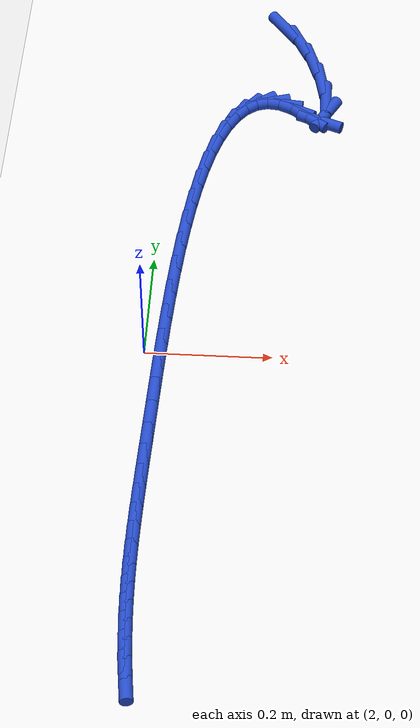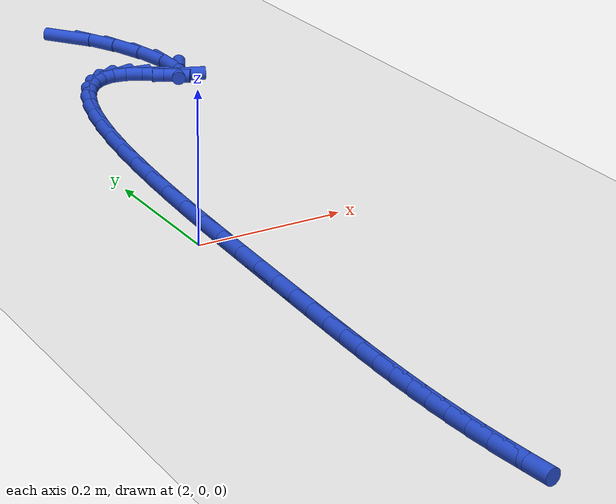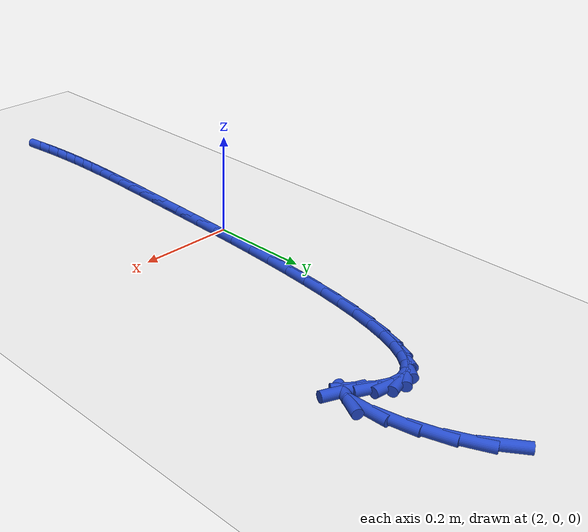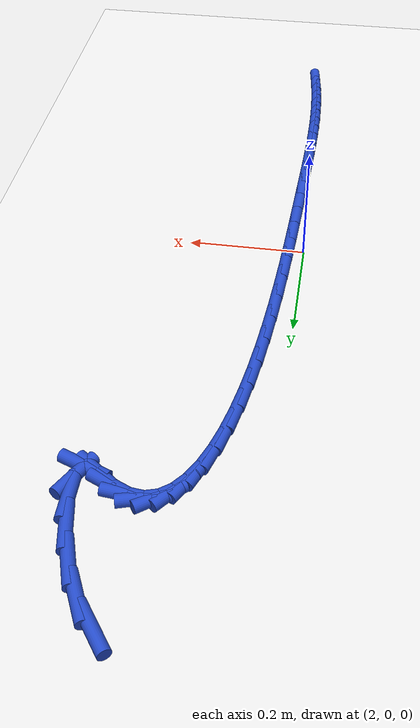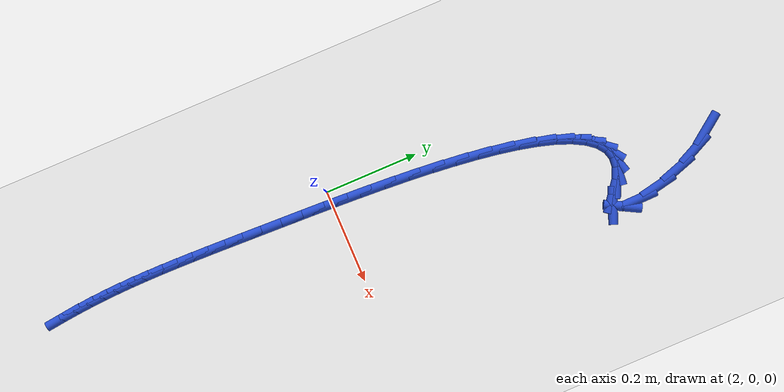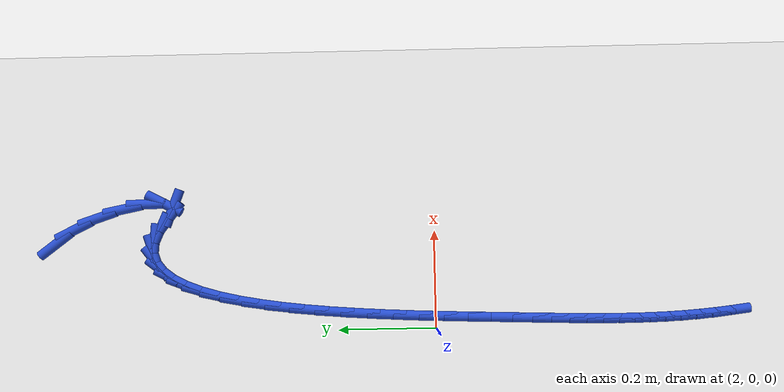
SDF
<sdf version="1.6">
 <world name="default">
  <model name="ground_plane">
   <static>1</static>
   <link name="link">
    <collision name="collision">
     <geometry><plane><normal>0 0 1</normal><size>100 100</size></plane></geometry>
     <surface><friction><ode><mu>100</mu><mu2>50</mu2></ode></friction></surface>
    </collision>
    <visual name="visual">
     <cast_shadows>0</cast_shadows>
     <geometry><plane><normal>0 0 1</normal><size>100 100</size></plane></geometry>
     <material>
      <script><uri>file://media/materials/scripts/gazebo.material</uri><name>Gazebo/WhiteGlow</name></script>
     </material>
    </visual>
   </link>
  </model>
  <model name="line">
   <link name="link_99">
    <pose>2.1888042719367853 0.7743270735114104 0.01 0 1.57 -0.9363026649190562</pose>
    <collision name="collision">
     <geometry><cylinder><radius>0.01</radius><length>0.08</length></cylinder></geometry>
    </collision>
    <visual name="visual">
     <material>
      <script><name>Gazebo/Blue</name><uri>file://media/materials/scripts/gazebo.material</uri></script>
     </material>
     <geometry><cylinder><radius>0.01</radius><length>0.08</length></cylinder></geometry>
    </visual>
   </link>
   <link name="link_100">
    <pose>2.2171648789369764 0.7357946834804234 0.01 0 1.57 -1.1264641274387024</pose>
    <collision name="collision">
     <geometry><cylinder><radius>0.01</radius><length>0.08</length></cylinder></geometry>
    </collision>
    <visual name="visual">
     <material>
      <script><name>Gazebo/Blue</name><uri>file://media/materials/scripts/gazebo.material</uri></script>
     </material>
     <geometry><cylinder><radius>0.01</radius><length>0.08</length></cylinder></geometry>
    </visual>
   </link>
   <link name="link_101">
    <pose>2.240402559902176 0.6869846128494241 0.01 0 1.57 -1.255866447374387</pose>
    <collision name="collision">
     <geometry><cylinder><radius>0.01</radius><length>0.08</length></cylinder></geometry>
    </collision>
    <visual name="visual">
     <material>
      <script><name>Gazebo/Blue</name><uri>file://media/materials/scripts/gazebo.material</uri></script>
     </material>
     <geometry><cylinder><radius>0.01</radius><length>0.08</length></cylinder></geometry>
    </visual>
   </link>
   <link name="link_102">
    <pose>2.2572978128848513 0.6351223925845828 0.01 0 1.57 -1.3775150531442284</pose>
    <collision name="collision">
     <geometry><cylinder><radius>0.01</radius><length>0.08</length></cylinder></geometry>
    </collision>
    <visual name="visual">
     <material>
      <script><name>Gazebo/Blue</name><uri>file://media/materials/scripts/gazebo.material</uri></script>
     </material>
     <geometry><cylinder><radius>0.01</radius><length>0.08</length></cylinder></geometry>
    </visual>
   </link>
   <link name="link_103">
    <pose>2.2666312411974037 0.5874358647580553 0.01 0 1.57 -1.555578058561656</pose>
    <collision name="collision">
     <geometry><cylinder><radius>0.01</radius><length>0.08</length></cylinder></geometry>
    </collision>
    <visual name="visual">
     <material>
      <script><name>Gazebo/Blue</name><uri>file://media/materials/scripts/gazebo.material</uri></script>
     </material>
     <geometry><cylinder><radius>0.01</radius><length>0.08</length></cylinder></geometry>
    </visual>
   </link>
   <link name="link_104">
    <pose>2.2671834481522337 0.5511528714419979 0.01 0 1.57 1.07933109779361</pose>
    <collision name="collision">
     <geometry><cylinder><radius>0.01</radius><length>0.08</length></cylinder></geometry>
    </collision>
    <visual name="visual">
     <material>
      <script><name>Gazebo/Blue</name><uri>file://media/materials/scripts/gazebo.material</uri></script>
     </material>
     <geometry><cylinder><radius>0.01</radius><length>0.08</length></cylinder></geometry>
    </visual>
   </link>
   <link name="link_105">
    <pose>2.2577350370617433 0.5335012547085666 0.01 0 1.57 -0.3769102465045212</pose>
    <collision name="collision">
     <geometry><cylinder><radius>0.01</radius><length>0.08</length></cylinder></geometry>
    </collision>
    <visual name="visual">
     <material>
      <script><name>Gazebo/Blue</name><uri>file://media/materials/scripts/gazebo.material</uri></script>
     </material>
     <geometry><cylinder><radius>0.01</radius><length>0.08</length></cylinder></geometry>
    </visual>
   </link>
   <link name="link_106">
    <pose>2.237076962986386 0.5416784323557527 0.01 0 1.57 -0.656801739641008</pose>
    <collision name="collision">
     <geometry><cylinder><radius>0.01</radius><length>0.08</length></cylinder></geometry>
    </collision>
    <visual name="visual">
     <material>
      <script><name>Gazebo/Blue</name><uri>file://media/materials/scripts/gazebo.material</uri></script>
     </material>
     <geometry><cylinder><radius>0.01</radius><length>0.08</length></cylinder></geometry>
    </visual>
   </link>
   <link name="link_107">
    <pose>2.21109851242775 0.5617076329680778 0.01 0 1.57 -0.4300035500214459</pose>
    <collision name="collision">
     <geometry><cylinder><radius>0.01</radius><length>0.08</length></cylinder></geometry>
    </collision>
    <visual name="visual">
     <material>
      <script><name>Gazebo/Blue</name><uri>file://media/materials/scripts/gazebo.material</uri></script>
     </material>
     <geometry><cylinder><radius>0.01</radius><length>0.08</length></cylinder></geometry>
    </visual>
   </link>
   <link name="link_108">
    <pose>2.1873478235861645 0.5726003002430565 0.01 0 1.57 -0.10359915343444842</pose>
    <collision name="collision">
     <geometry><cylinder><radius>0.01</radius><length>0.08</length></cylinder></geometry>
    </collision>
    <visual name="visual">
     <material>
      <script><name>Gazebo/Blue</name><uri>file://media/materials/scripts/gazebo.material</uri></script>
     </material>
     <geometry><cylinder><radius>0.01</radius><length>0.08</length></cylinder></geometry>
    </visual>
   </link>
   <link name="link_109">
    <pose>2.1657609835300864 0.5748447139523627 0.01 0 1.57 0.28761097088837906</pose>
    <collision name="collision">
     <geometry><cylinder><radius>0.01</radius><length>0.08</length></cylinder></geometry>
    </collision>
    <visual name="visual">
     <material>
      <script><name>Gazebo/Blue</name><uri>file://media/materials/scripts/gazebo.material</uri></script>
     </material>
     <geometry><cylinder><radius>0.01</radius><length>0.08</length></cylinder></geometry>
    </visual>
   </link>
   <link name="link_110">
    <pose>2.1462264318307858 0.5690661422957188 0.01 0 1.57 0.6428067218936064</pose>
    <collision name="collision">
     <geometry><cylinder><radius>0.01</radius><length>0.08</length></cylinder></geometry>
    </collision>
    <visual name="visual">
     <material>
      <script><name>Gazebo/Blue</name><uri>file://media/materials/scripts/gazebo.material</uri></script>
     </material>
     <geometry><cylinder><radius>0.01</radius><length>0.08</length></cylinder></geometry>
    </visual>
   </link>
   <link name="link_111">
    <pose>2.128632608059534 0.5558898534728471 0.01 0 1.57 0.9020237165713776</pose>
    <collision name="collision">
     <geometry><cylinder><radius>0.01</radius><length>0.08</length></cylinder></geometry>
    </collision>
    <visual name="visual">
     <material>
      <script><name>Gazebo/Blue</name><uri>file://media/materials/scripts/gazebo.material</uri></script>
     </material>
     <geometry><cylinder><radius>0.01</radius><length>0.08</length></cylinder></geometry>
    </visual>
   </link>
   <link name="link_112">
    <pose>2.1128679517876 0.5359411156834699 0.01 0 1.57 1.0769915975361761</pose>
    <collision name="collision">
     <geometry><cylinder><radius>0.01</radius><length>0.08</length></cylinder></geometry>
    </collision>
    <visual name="visual">
     <material>
      <script><name>Gazebo/Blue</name><uri>file://media/materials/scripts/gazebo.material</uri></script>
     </material>
     <geometry><cylinder><radius>0.01</radius><length>0.08</length></cylinder></geometry>
    </visual>
   </link>
   <link name="link_113">
    <pose>2.0988209025862554 0.5098451971273098 0.01 0 1.57 1.1959227420012146</pose>
    <collision name="collision">
     <geometry><cylinder><radius>0.01</radius><length>0.08</length></cylinder></geometry>
    </collision>
    <visual name="visual">
     <material>
      <script><name>Gazebo/Blue</name><uri>file://media/materials/scripts/gazebo.material</uri></script>
     </material>
     <geometry><cylinder><radius>0.01</radius><length>0.08</length></cylinder></geometry>
    </visual>
   </link>
   <link name="link_114">
    <pose>2.0863799000267713 0.4782273660040892 0.01 0 1.57 1.2795361807937606</pose>
    <collision name="collision">
     <geometry><cylinder><radius>0.01</radius><length>0.08</length></cylinder></geometry>
    </collision>
    <visual name="visual">
     <material>
      <script><name>Gazebo/Blue</name><uri>file://media/materials/scripts/gazebo.material</uri></script>
     </material>
     <geometry><cylinder><radius>0.01</radius><length>0.08</length></cylinder></geometry>
    </visual>
   </link>
   <link name="link_115">
    <pose>2.075433383680418 0.4417128905135306 0.01 0 1.57 1.3404743259878367</pose>
    <collision name="collision">
     <geometry><cylinder><radius>0.01</radius><length>0.08</length></cylinder></geometry>
    </collision>
    <visual name="visual">
     <material>
      <script><name>Gazebo/Blue</name><uri>file://media/materials/scripts/gazebo.material</uri></script>
     </material>
     <geometry><cylinder><radius>0.01</radius><length>0.08</length></cylinder></geometry>
    </visual>
   </link>
   <link name="link_116">
    <pose>2.0658697931184657 0.40092703885535624 0.01 0 1.57 1.386291385119261</pose>
    <collision name="collision">
     <geometry><cylinder><radius>0.01</radius><length>0.08</length></cylinder></geometry>
    </collision>
    <visual name="visual">
     <material>
      <script><name>Gazebo/Blue</name><uri>file://media/materials/scripts/gazebo.material</uri></script>
     </material>
     <geometry><cylinder><radius>0.01</radius><length>0.08</length></cylinder></geometry>
    </visual>
   </link>
   <link name="link_117">
    <pose>2.0575775679121855 0.35649507922928864 0.01 0 1.57 1.421607542125742</pose>
    <collision name="collision">
     <geometry><cylinder><radius>0.01</radius><length>0.08</length></cylinder></geometry>
    </collision>
    <visual name="visual">
     <material>
      <script><name>Gazebo/Blue</name><uri>file://media/materials/scripts/gazebo.material</uri></script>
     </material>
     <geometry><cylinder><radius>0.01</radius><length>0.08</length></cylinder></geometry>
    </visual>
   </link>
   <link name="link_118">
    <pose>2.050445147632849 0.30904227983505017 0.01 0 1.57 1.4493433948774421</pose>
    <collision name="collision">
     <geometry><cylinder><radius>0.01</radius><length>0.08</length></cylinder></geometry>
    </collision>
    <visual name="visual">
     <material>
      <script><name>Gazebo/Blue</name><uri>file://media/materials/scripts/gazebo.material</uri></script>
     </material>
     <geometry><cylinder><radius>0.01</radius><length>0.08</length></cylinder></geometry>
    </visual>
   </link>
   <link name="link_119">
    <pose>2.0443609718517246 0.2591939088723634 0.01 0 1.57 1.4714034229534714</pose>
    <collision name="collision">
     <geometry><cylinder><radius>0.01</radius><length>0.08</length></cylinder></geometry>
    </collision>
    <visual name="visual">
     <material>
      <script><name>Gazebo/Blue</name><uri>file://media/materials/scripts/gazebo.material</uri></script>
     </material>
     <geometry><cylinder><radius>0.01</radius><length>0.08</length></cylinder></geometry>
    </visual>
   </link>
   <link name="link_120">
    <pose>2.0392134801400847 0.20757523454095117 0.01 0 1.57 1.4890595035089682</pose>
    <collision name="collision">
     <geometry><cylinder><radius>0.01</radius><length>0.08</length></cylinder></geometry>
    </collision>
    <visual name="visual">
     <material>
      <script><name>Gazebo/Blue</name><uri>file://media/materials/scripts/gazebo.material</uri></script>
     </material>
     <geometry><cylinder><radius>0.01</radius><length>0.08</length></cylinder></geometry>
    </visual>
   </link>
   <link name="link_121">
    <pose>2.0348911120691993 0.1548115250405347 0.01 0 1.57 1.5031711978058853</pose>
    <collision name="collision">
     <geometry><cylinder><radius>0.01</radius><length>0.08</length></cylinder></geometry>
    </collision>
    <visual name="visual">
     <material>
      <script><name>Gazebo/Blue</name><uri>file://media/materials/scripts/gazebo.material</uri></script>
     </material>
     <geometry><cylinder><radius>0.01</radius><length>0.08</length></cylinder></geometry>
    </visual>
   </link>
   <link name="link_122">
    <pose>2.0312823072103394 0.10152804857083707 0.01 0 1.57 1.514314222684581</pose>
    <collision name="collision">
     <geometry><cylinder><radius>0.01</radius><length>0.08</length></cylinder></geometry>
    </collision>
    <visual name="visual">
     <material>
      <script><name>Gazebo/Blue</name><uri>file://media/materials/scripts/gazebo.material</uri></script>
     </material>
     <geometry><cylinder><radius>0.01</radius><length>0.08</length></cylinder></geometry>
    </visual>
   </link>
   <link name="link_123">
    <pose>2.0282755051347756 0.04835007333158062 0.01 0 1.57 1.5228541823395723</pose>
    <collision name="collision">
     <geometry><cylinder><radius>0.01</radius><length>0.08</length></cylinder></geometry>
    </collision>
    <visual name="visual">
     <material>
      <script><name>Gazebo/Blue</name><uri>file://media/materials/scripts/gazebo.material</uri></script>
     </material>
     <geometry><cylinder><radius>0.01</radius><length>0.08</length></cylinder></geometry>
    </visual>
   </link>
   <link name="link_124">
    <pose>2.025759145413778 -0.00409713247751213 0.01 0 1.57 1.5289841681343352</pose>
    <collision name="collision">
     <geometry><cylinder><radius>0.01</radius><length>0.08</length></cylinder></geometry>
    </collision>
    <visual name="visual">
     <material>
      <script><name>Gazebo/Blue</name><uri>file://media/materials/scripts/gazebo.material</uri></script>
     </material>
     <geometry><cylinder><radius>0.01</radius><length>0.08</length></cylinder></geometry>
    </visual>
   </link>
   <link name="link_125">
    <pose>2.023621667618618 -0.055188300656718745 0.01 0 1.57 1.5327336448678033</pose>
    <collision name="collision">
     <geometry><cylinder><radius>0.01</radius><length>0.08</length></cylinder></geometry>
    </collision>
    <visual name="visual">
     <material>
      <script><name>Gazebo/Blue</name><uri>file://media/materials/scripts/gazebo.material</uri></script>
     </material>
     <geometry><cylinder><radius>0.01</radius><length>0.08</length></cylinder></geometry>
    </visual>
   </link>
   <link name="link_126">
    <pose>2.0217515113205664 -0.10429816300631704 0.01 0 1.57 1.5339727857856826</pose>
    <collision name="collision">
     <geometry><cylinder><radius>0.01</radius><length>0.08</length></cylinder></geometry>
    </collision>
    <visual name="visual">
     <material>
      <script><name>Gazebo/Blue</name><uri>file://media/materials/scripts/gazebo.material</uri></script>
     </material>
     <geometry><cylinder><radius>0.01</radius><length>0.08</length></cylinder></geometry>
    </visual>
   </link>
   <link name="link_127">
    <pose>2.0200381088504815 -0.15080721429621696 0.01 0 1.57 1.5339646005583256</pose>
    <collision name="collision">
     <geometry><cylinder><radius>0.01</radius><length>0.08</length></cylinder></geometry>
    </collision>
    <visual name="visual">
     <material>
      <script><name>Gazebo/Blue</name><uri>file://media/materials/scripts/gazebo.material</uri></script>
     </material>
     <geometry><cylinder><radius>0.01</radius><length>0.08</length></cylinder></geometry>
    </visual>
   </link>
   <link name="link_128">
    <pose>2.018430284430563 -0.19444071923877057 0.01 0 1.57 1.5351807258061774</pose>
    <collision name="collision">
     <geometry><cylinder><radius>0.01</radius><length>0.08</length></cylinder></geometry>
    </collision>
    <visual name="visual">
     <material>
      <script><name>Gazebo/Blue</name><uri>file://media/materials/scripts/gazebo.material</uri></script>
     </material>
     <geometry><cylinder><radius>0.01</radius><length>0.08</length></cylinder></geometry>
    </visual>
   </link>
   <link name="link_129">
    <pose>2.0169688199849416 -0.23545775702650024 0.01 0 1.57 1.538088516400935</pose>
    <collision name="collision">
     <geometry><cylinder><radius>0.01</radius><length>0.08</length></cylinder></geometry>
    </collision>
    <visual name="visual">
     <material>
      <script><name>Gazebo/Blue</name><uri>file://media/materials/scripts/gazebo.material</uri></script>
     </material>
     <geometry><cylinder><radius>0.01</radius><length>0.08</length></cylinder></geometry>
    </visual>
   </link>
   <link name="link_130">
    <pose>2.0157023961330642 -0.27416325877999603 0.01 0 1.57 1.5429361427231405</pose>
    <collision name="collision">
     <geometry><cylinder><radius>0.01</radius><length>0.08</length></cylinder></geometry>
    </collision>
    <visual name="visual">
     <material>
      <script><name>Gazebo/Blue</name><uri>file://media/materials/scripts/gazebo.material</uri></script>
     </material>
     <geometry><cylinder><radius>0.01</radius><length>0.08</length></cylinder></geometry>
    </visual>
   </link>
   <link name="link_131">
    <pose>2.0146796934943776 -0.31086215561984754 0.01 0 1.57 1.5499319619262522</pose>
    <collision name="collision">
     <geometry><cylinder><radius>0.01</radius><length>0.08</length></cylinder></geometry>
    </collision>
    <visual name="visual">
     <material>
      <script><name>Gazebo/Blue</name><uri>file://media/materials/scripts/gazebo.material</uri></script>
     </material>
     <geometry><cylinder><radius>0.01</radius><length>0.08</length></cylinder></geometry>
    </visual>
   </link>
   <link name="link_132">
    <pose>2.0139493926883296 -0.34585937866664496 0.01 0 1.57 1.5592131308918744</pose>
    <collision name="collision">
     <geometry><cylinder><radius>0.01</radius><length>0.08</length></cylinder></geometry>
    </collision>
    <visual name="visual">
     <material>
      <script><name>Gazebo/Blue</name><uri>file://media/materials/scripts/gazebo.material</uri></script>
     </material>
     <geometry><cylinder><radius>0.01</radius><length>0.08</length></cylinder></geometry>
    </visual>
   </link>
   <link name="link_133">
    <pose>2.0135601743343647 -0.37945985904097784 0.01 0 1.57 -1.5707795707237706</pose>
    <collision name="collision">
     <geometry><cylinder><radius>0.01</radius><length>0.08</length></cylinder></geometry>
    </collision>
    <visual name="visual">
     <material>
      <script><name>Gazebo/Blue</name><uri>file://media/materials/scripts/gazebo.material</uri></script>
     </material>
     <geometry><cylinder><radius>0.01</radius><length>0.08</length></cylinder></geometry>
    </visual>
   </link>
   <link name="link_134">
    <pose>2.013560719051932 -0.41196852786343646 0.01 0 1.57 -1.556958507096988</pose>
    <collision name="collision">
     <geometry><cylinder><radius>0.01</radius><length>0.08</length></cylinder></geometry>
    </collision>
    <visual name="visual">
     <material>
      <script><name>Gazebo/Blue</name><uri>file://media/materials/scripts/gazebo.material</uri></script>
     </material>
     <geometry><cylinder><radius>0.01</radius><length>0.08</length></cylinder></geometry>
    </visual>
   </link>
   <link name="link_135">
    <pose>2.0139997074604774 -0.4436903162546105 0.01 0 1.57 -1.5411597605587517</pose>
    <collision name="collision">
     <geometry><cylinder><radius>0.01</radius><length>0.08</length></cylinder></geometry>
    </collision>
    <visual name="visual">
     <material>
      <script><name>Gazebo/Blue</name><uri>file://media/materials/scripts/gazebo.material</uri></script>
     </material>
     <geometry><cylinder><radius>0.01</radius><length>0.08</length></cylinder></geometry>
    </visual>
   </link>
   <link name="link_136">
    <pose>2.0149258201794487 -0.47493015533508987 0.01 0 1.57 -1.5237677672272347</pose>
    <collision name="collision">
     <geometry><cylinder><radius>0.01</radius><length>0.08</length></cylinder></geometry>
    </collision>
    <visual name="visual">
     <material>
      <script><name>Gazebo/Blue</name><uri>file://media/materials/scripts/gazebo.material</uri></script>
     </material>
     <geometry><cylinder><radius>0.01</radius><length>0.08</length></cylinder></geometry>
    </visual>
   </link>
   <link name="link_137">
    <pose>2.016387737828291 -0.5059929762254644 0.01 0 1.57 -1.505280893098718</pose>
    <collision name="collision">
     <geometry><cylinder><radius>0.01</radius><length>0.08</length></cylinder></geometry>
    </collision>
    <visual name="visual">
     <material>
      <script><name>Gazebo/Blue</name><uri>file://media/materials/scripts/gazebo.material</uri></script>
     </material>
     <geometry><cylinder><radius>0.01</radius><length>0.08</length></cylinder></geometry>
    </visual>
   </link>
   <link name="link_138">
    <pose>2.0184341410264524 -0.5371837100463239 0.01 0 1.57 -1.4862649684977607</pose>
    <collision name="collision">
     <geometry><cylinder><radius>0.01</radius><length>0.08</length></cylinder></geometry>
    </collision>
    <visual name="visual">
     <material>
      <script><name>Gazebo/Blue</name><uri>file://media/materials/scripts/gazebo.material</uri></script>
     </material>
     <geometry><cylinder><radius>0.01</radius><length>0.08</length></cylinder></geometry>
    </visual>
   </link>
   <link name="link_139">
    <pose>2.02111371039338 -0.5688072879182586 0.01 0 1.57 -1.4672961808199085</pose>
    <collision name="collision">
     <geometry><cylinder><radius>0.01</radius><length>0.08</length></cylinder></geometry>
    </collision>
    <visual name="visual">
     <material>
      <script><name>Gazebo/Blue</name><uri>file://media/materials/scripts/gazebo.material</uri></script>
     </material>
     <geometry><cylinder><radius>0.01</radius><length>0.08</length></cylinder></geometry>
    </visual>
   </link>
   <link name="link_140">
    <pose>2.0244751265485195 -0.6011686409618581 0.01 0 1.57 -1.4489052073575108</pose>
    <collision name="collision">
     <geometry><cylinder><radius>0.01</radius><length>0.08</length></cylinder></geometry>
    </collision>
    <visual name="visual">
     <material>
      <script><name>Gazebo/Blue</name><uri>file://media/materials/scripts/gazebo.material</uri></script>
     </material>
     <geometry><cylinder><radius>0.01</radius><length>0.08</length></cylinder></geometry>
    </visual>
   </link>
  </model>
 </world>
</sdf>
